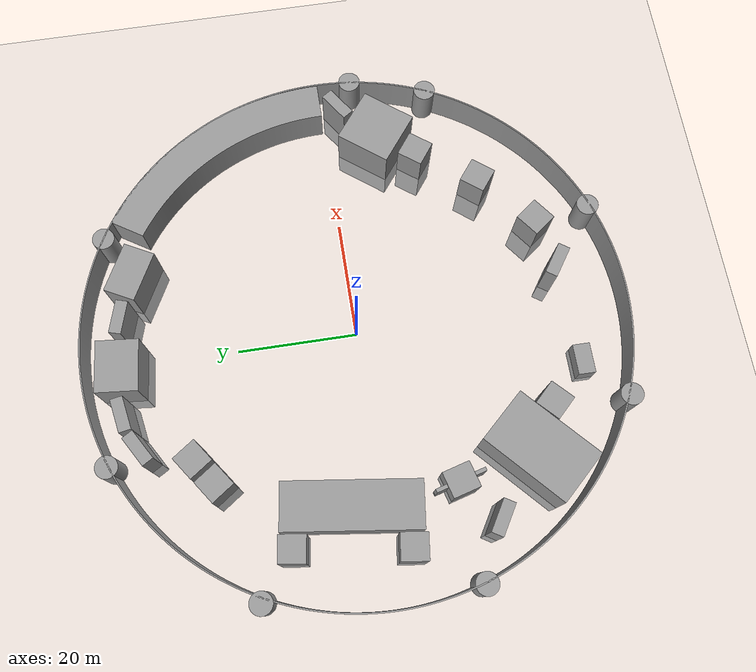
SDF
<sdf version="1.7">
 <world name="default">
  <include><uri>model://ground_plane</uri></include>
  <include><uri>model://sun</uri></include>
  <scene><shadows>false</shadows></scene>
  <physics type="ode">
   <real_time_update_rate>1000</real_time_update_rate>
   <max_step_size>0.001</max_step_size>
   <real_time_factor>1</real_time_factor>
   <ode>
    <solver>
     <type>quick</type>
     <iters>150</iters>
     <precon_iters>0</precon_iters>
     <sor>1.4</sor>
     <use_dynamic_moi_rescaling>1</use_dynamic_moi_rescaling>
    </solver>
    <constraints>
     <cfm>1e-05</cfm>
     <erp>0.2</erp>
     <contact_max_correcting_vel>2000</contact_max_correcting_vel>
     <contact_surface_layer>0.01</contact_surface_layer>
    </constraints>
   </ode>
  </physics>
  <include><pose>-24.247654503 -25.581844504 0 0 -0 0.740794</pose><uri>model://ARMW</uri></include>
  <include><pose>14.167002049 35.705465734 0 0 0 -2.05182</pose><uri>model://CMC</uri></include>
  <include>
   <pose>-10.47295674 -36.379891449 -0.591475 0 -0 1.56691</pose>
   <uri>model://Cabinet</uri>
   <name>Cabinet_1</name>
  </include>
  <include>
   <pose>-10.47295674 -36.379891449 -0.591475 0 -0 1.56691</pose>
   <uri>model://Cabinet</uri>
   <name>Cabinet_2</name>
  </include>
  <include>
   <pose>40.019924308 -2.683707859 0 0 -0 0.595443</pose>
   <uri>model://Display_Board</uri>
   <name>Display_Board_1</name>
  </include>
  <include>
   <pose>6.646768167 38.040504511 0 0 -0 2.85766</pose>
   <uri>model://Display_Board</uri>
   <name>Display_Board_2</name>
  </include>
  <include>
   <pose>5.694397309 -34.553750223 0 0 0 -0.605388</pose>
   <uri>model://Display_Board</uri>
   <name>Display_Board_3</name>
  </include>
  <include>
   <pose>-9.480358985 38.861607981 0 0 0 -2.96148</pose>
   <uri>model://Display_Board</uri>
   <name>Display_Board_4</name>
  </include>
  <include>
   <pose>-15.193619396 36.65344451 0 0 0 -2.60379</pose>
   <uri>model://Display_Board</uri>
   <name>Display_Board_5</name>
  </include>
  <include>
   <pose>-34.041552264 -17.483912255 0 0 0 -0.547968</pose>
   <uri>model://Display_Board</uri>
   <name>Display_Board_6</name>
  </include>
  <include><pose>-1.473479919 38.910733287 0 0 0 -1.66308</pose><uri>model://ERP</uri></include>
  <include>
   <pose>34.640449407 -8.594580209 0.041255102 0 0 -0.661076</pose>
   <uri>model://FlexPicker</uri>
  </include>
  <include><pose>-28.396902261 4.99599286 -0.477378 0 0 -0.131153</pose><uri>model://IMS</uri></include>
  <include><pose>-0.023179 0.019344 0 0 -0 0</pose><uri>model://Lab</uri></include>
  <include>
   <pose>21.089227359 39.723395328 0 0 -0 0</pose>
   <uri>model://Pillar</uri>
   <name>Pillar_1</name>
  </include>
  <include>
   <pose>44.679592882 -5.420977534 0 0 -0 0</pose>
   <uri>model://Pillar</uri>
   <name>Pillar_2</name>
  </include>
  <include>
   <pose>41.065011247 -18.322723684 0 0 -0 0</pose>
   <uri>model://Pillar</uri>
   <name>Pillar_3</name>
  </include>
  <include>
   <pose>-17.271226336 41.867010431 0 0 -0 0</pose>
   <uri>model://Pillar</uri>
   <name>Pillar_4</name>
  </include>
  <include>
   <pose>-40.947275533 20.518066338 0 0 -0 0</pose>
   <uri>model://Pillar</uri>
   <name>Pillar_5</name>
  </include>
  <include>
   <pose>-43.206468391 -13.316067967 0 0 -0 0</pose>
   <uri>model://Pillar</uri>
   <name>Pillar_6</name>
  </include>
  <include>
   <pose>-18.076970214 -41.671334309 0 0 -0 0</pose>
   <uri>model://Pillar</uri>
   <name>Pillar_7</name>
  </include>
  <include>
   <pose>15.142209192 -41.958723697 0 0 -0 0</pose>
   <uri>model://Pillar</uri>
   <name>Pillar_8</name>
  </include>
  <include>
   <pose>-0.138864674 0.342036531 0 0 -0 0</pose>
   <uri>model://Stairs</uri>
   <name>Stairs_2</name>
  </include>
  <include>
   <pose>-22.096676951 25.679904708 -0.491712 0 -0 2.1842</pose>
   <uri>model://Table</uri>
   <name>Table_1</name>
  </include>
  <include>
   <pose>-17.903317969 28.656682465 -0.491403 0 -0 2.18366</pose>
   <uri>model://Table</uri>
   <name>Table_2</name>
  </include>
  <include>
   <pose>30.241513078 -14.902993069 -0.494104 0 -0 2.49855</pose>
   <uri>model://Table</uri>
   <name>Table_3</name>
  </include>
  <include>
   <pose>23.615182054 -24.667377565 -0.494606 0 -0 0.905374</pose>
   <uri>model://Table</uri>
   <name>Table_4</name>
  </include>
  <include>
   <pose>14.425703273 -32.928553079 -0.497075 0 -0 0.640835</pose>
   <uri>model://Table</uri>
   <name>Table_5</name>
  </include>
  <include>
   <pose>-33.762160019 14.994325518 -0.481819 0 -0 1.43389</pose>
   <uri>model://Table</uri>
   <name>Table_6</name>
  </include>
  <include>
   <pose>-36.187515734 -3.517397308 -0.494195 0 -0 1.44259</pose>
   <uri>model://Table</uri>
   <name>Table_7</name>
  </include>
  <include>
   <pose>-17.135338377 -29.484577159 -0.480847 0 -0 0.767527</pose>
   <uri>model://Table</uri>
   <name>Table_8</name>
  </include>
  <include><pose>-27.130624505 -12.59721368 0.5 0 -0 0.2645</pose><uri>model://screen_and_stand</uri></include>
 </world>
</sdf>

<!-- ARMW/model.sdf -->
<sdf version='1.6'>
  <model name='ARMW'>
    <link name='base_station'>
      <pose frame=''>0 0 1 0 -0 0</pose>
      <inertial>
        <mass>1</mass>
        <inertia>
          <ixx>0.166667</ixx>
          <ixy>0</ixy>
          <ixz>0</ixz>
          <iyy>0.166667</iyy>
          <iyz>0</iyz>
          <izz>0.166667</izz>
        </inertia>
        <pose frame=''>0 0 0 0 -0 0</pose>
      </inertial>
      <gravity>1</gravity>
      <self_collide>0</self_collide>
      <kinematic>0</kinematic>
      <visual name='visual'>
        <pose frame=''>0 0 0 0 -0 0</pose>
        <geometry>
          <box>
            <size>15.74 9.84 12.69</size>
          </box>
        </geometry>
        <material>
          <lighting>1</lighting>
          <script>
            <uri>file://media/materials/scripts/gazebo.material</uri>
            <name>Gazebo/Grey</name>
          </script>
          <ambient>0.3 0.3 0.3 1</ambient>
          <diffuse>0.7 0.7 0.7 1</diffuse>
          <specular>0.01 0.01 0.01 1</specular>
          <emissive>0 0 0 1</emissive>
          <shader type='vertex'>
            <normal_map>__default__</normal_map>
          </shader>
        </material>
        <cast_shadows>1</cast_shadows>
        <transparency>0</transparency>
      </visual>
      <collision name='collision'>
        <laser_retro>0</laser_retro>
        <max_contacts>10</max_contacts>
        <pose frame=''>0 0 0 0 -0 0</pose>
        <geometry>
          <box>
            <size>15.74 9.84 12.69</size>
          </box>
        </geometry>
        <surface>
          <friction>
            <ode>
              <mu>1</mu>
              <mu2>1</mu2>
              <fdir1>0 0 0</fdir1>
              <slip1>0</slip1>
              <slip2>0</slip2>
            </ode>
            <torsional>
              <coefficient>1</coefficient>
              <patch_radius>0</patch_radius>
              <surface_radius>0</surface_radius>
              <use_patch_radius>1</use_patch_radius>
              <ode>
                <slip>0</slip>
              </ode>
            </torsional>
          </friction>
          <bounce>
            <restitution_coefficient>0</restitution_coefficient>
            <threshold>1e+06</threshold>
          </bounce>
          <contact>
            <collide_without_contact>0</collide_without_contact>
            <collide_without_contact_bitmask>1</collide_without_contact_bitmask>
            <collide_bitmask>1</collide_bitmask>
            <ode>
              <soft_cfm>0</soft_cfm>
              <soft_erp>0.2</soft_erp>
              <kp>1e+13</kp>
              <kd>1</kd>
              <max_vel>0.01</max_vel>
              <min_depth>0</min_depth>
            </ode>
            <bullet>
              <split_impulse>1</split_impulse>
              <split_impulse_penetration_threshold>-0.01</split_impulse_penetration_threshold>
              <soft_cfm>0</soft_cfm>
              <soft_erp>0.2</soft_erp>
              <kp>1e+13</kp>
              <kd>1</kd>
            </bullet>
          </contact>
        </surface>
      </collision>
    </link>
    <static>1</static>
    <allow_auto_disable>1</allow_auto_disable>
  </model>
</sdf>

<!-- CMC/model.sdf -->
<sdf version='1.6'>
  <model name='CMC'>
    <link name='base_station'>
      <pose frame=''>0 0 1 0 -0 0</pose>
      <inertial>
        <mass>1</mass>
        <inertia>
          <ixx>0.166667</ixx>
          <ixy>0</ixy>
          <ixz>0</ixz>
          <iyy>0.166667</iyy>
          <iyz>0</iyz>
          <izz>0.166667</izz>
        </inertia>
        <pose frame=''>0 0 0 0 -0 0</pose>
      </inertial>
      <gravity>1</gravity>
      <self_collide>0</self_collide>
      <kinematic>0</kinematic>
      <visual name='visual'>
        <pose frame=''>0 0 0 0 -0 0</pose>
        <geometry>
          <box>
            <size>5.39 8.57 12.69</size>
          </box>
        </geometry>
        <material>
          <lighting>1</lighting>
          <script>
            <uri>file://media/materials/scripts/gazebo.material</uri>
            <name>Gazebo/Grey</name>
          </script>
          <ambient>0.3 0.3 0.3 1</ambient>
          <diffuse>0.7 0.7 0.7 1</diffuse>
          <specular>0.01 0.01 0.01 1</specular>
          <emissive>0 0 0 1</emissive>
          <shader type='vertex'>
            <normal_map>__default__</normal_map>
          </shader>
        </material>
        <cast_shadows>1</cast_shadows>
        <transparency>0</transparency>
      </visual>
      <collision name='collision'>
        <laser_retro>0</laser_retro>
        <max_contacts>10</max_contacts>
        <pose frame=''>0 0 0 0 -0 0</pose>
        <geometry>
          <box>
            <size>5.39 8.57 12.69</size>
          </box>
        </geometry>
        <surface>
          <friction>
            <ode>
              <mu>1</mu>
              <mu2>1</mu2>
              <fdir1>0 0 0</fdir1>
              <slip1>0</slip1>
              <slip2>0</slip2>
            </ode>
            <torsional>
              <coefficient>1</coefficient>
              <patch_radius>0</patch_radius>
              <surface_radius>0</surface_radius>
              <use_patch_radius>1</use_patch_radius>
              <ode>
                <slip>0</slip>
              </ode>
            </torsional>
          </friction>
          <bounce>
            <restitution_coefficient>0</restitution_coefficient>
            <threshold>1e+06</threshold>
          </bounce>
          <contact>
            <collide_without_contact>0</collide_without_contact>
            <collide_without_contact_bitmask>1</collide_without_contact_bitmask>
            <collide_bitmask>1</collide_bitmask>
            <ode>
              <soft_cfm>0</soft_cfm>
              <soft_erp>0.2</soft_erp>
              <kp>1e+13</kp>
              <kd>1</kd>
              <max_vel>0.01</max_vel>
              <min_depth>0</min_depth>
            </ode>
            <bullet>
              <split_impulse>1</split_impulse>
              <split_impulse_penetration_threshold>-0.01</split_impulse_penetration_threshold>
              <soft_cfm>0</soft_cfm>
              <soft_erp>0.2</soft_erp>
              <kp>1e+13</kp>
              <kd>1</kd>
            </bullet>
          </contact>
        </surface>
      </collision>
    </link>
    <static>1</static>
    <allow_auto_disable>1</allow_auto_disable>
  </model>
</sdf>

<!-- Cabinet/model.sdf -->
<sdf version='1.6'>
  <model name='Cabinet'>
    <link name='base_station'>
      <pose frame=''>0 0 1 0 -0 0</pose>
      <inertial>
        <mass>1</mass>
        <inertia>
          <ixx>0.166667</ixx>
          <ixy>0</ixy>
          <ixz>0</ixz>
          <iyy>0.166667</iyy>
          <iyz>0</iyz>
          <izz>0.166667</izz>
        </inertia>
        <pose frame=''>0 0 0 0 -0 0</pose>
      </inertial>
      <gravity>1</gravity>
      <self_collide>0</self_collide>
      <kinematic>0</kinematic>
      <visual name='visual'>
        <pose frame=''>0 0 0 0 -0 0</pose>
        <geometry>
          <box>
            <size>2.86 5.08 5.08</size>
          </box>
        </geometry>
        <material>
          <lighting>1</lighting>
          <script>
            <uri>file://media/materials/scripts/gazebo.material</uri>
            <name>Gazebo/Grey</name>
          </script>
          <ambient>0.3 0.3 0.3 1</ambient>
          <diffuse>0.7 0.7 0.7 1</diffuse>
          <specular>0.01 0.01 0.01 1</specular>
          <emissive>0 0 0 1</emissive>
          <shader type='vertex'>
            <normal_map>__default__</normal_map>
          </shader>
        </material>
        <cast_shadows>1</cast_shadows>
        <transparency>0</transparency>
      </visual>
      <collision name='collision'>
        <laser_retro>0</laser_retro>
        <max_contacts>10</max_contacts>
        <pose frame=''>0 0 0 0 -0 0</pose>
        <geometry>
          <box>
            <size>2.86 5.08 5.08</size>
          </box>
        </geometry>
        <surface>
          <friction>
            <ode>
              <mu>1</mu>
              <mu2>1</mu2>
              <fdir1>0 0 0</fdir1>
              <slip1>0</slip1>
              <slip2>0</slip2>
            </ode>
            <torsional>
              <coefficient>1</coefficient>
              <patch_radius>0</patch_radius>
              <surface_radius>0</surface_radius>
              <use_patch_radius>1</use_patch_radius>
              <ode>
                <slip>0</slip>
              </ode>
            </torsional>
          </friction>
          <bounce>
            <restitution_coefficient>0</restitution_coefficient>
            <threshold>1e+06</threshold>
          </bounce>
          <contact>
            <collide_without_contact>0</collide_without_contact>
            <collide_without_contact_bitmask>1</collide_without_contact_bitmask>
            <collide_bitmask>1</collide_bitmask>
            <ode>
              <soft_cfm>0</soft_cfm>
              <soft_erp>0.2</soft_erp>
              <kp>1e+13</kp>
              <kd>1</kd>
              <max_vel>0.01</max_vel>
              <min_depth>0</min_depth>
            </ode>
            <bullet>
              <split_impulse>1</split_impulse>
              <split_impulse_penetration_threshold>-0.01</split_impulse_penetration_threshold>
              <soft_cfm>0</soft_cfm>
              <soft_erp>0.2</soft_erp>
              <kp>1e+13</kp>
              <kd>1</kd>
            </bullet>
          </contact>
        </surface>
      </collision>
    </link>
    <static>1</static>
    <allow_auto_disable>1</allow_auto_disable>
  </model>
</sdf>

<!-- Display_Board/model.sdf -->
<sdf version='1.6'>
  <model name='Display_Board'>
    <link name='base_station'>
      <pose frame=''>0 0 1 0 -0 0</pose>
      <inertial>
        <mass>1</mass>
        <inertia>
          <ixx>0.166667</ixx>
          <ixy>0</ixy>
          <ixz>0</ixz>
          <iyy>0.166667</iyy>
          <iyz>0</iyz>
          <izz>0.166667</izz>
        </inertia>
        <pose frame=''>0 0 0 0 -0 0</pose>
      </inertial>
      <gravity>1</gravity>
      <self_collide>0</self_collide>
      <kinematic>0</kinematic>
      <visual name='visual'>
        <pose frame=''>0 0 0 0 -0 0</pose>
        <geometry>
          <box>
            <size>5.59 2.03 12.69</size>
          </box>
        </geometry>
        <material>
          <lighting>1</lighting>
          <script>
            <uri>file://media/materials/scripts/gazebo.material</uri>
            <name>Gazebo/Grey</name>
          </script>
          <ambient>0.3 0.3 0.3 1</ambient>
          <diffuse>0.7 0.7 0.7 1</diffuse>
          <specular>0.01 0.01 0.01 1</specular>
          <emissive>0 0 0 1</emissive>
          <shader type='vertex'>
            <normal_map>__default__</normal_map>
          </shader>
        </material>
        <cast_shadows>1</cast_shadows>
        <transparency>0</transparency>
      </visual>
      <collision name='collision'>
        <laser_retro>0</laser_retro>
        <max_contacts>10</max_contacts>
        <pose frame=''>0 0 0 0 -0 0</pose>
        <geometry>
          <box>
            <size>5.59 2.03 12.69</size>
          </box>
        </geometry>
        <surface>
          <friction>
            <ode>
              <mu>1</mu>
              <mu2>1</mu2>
              <fdir1>0 0 0</fdir1>
              <slip1>0</slip1>
              <slip2>0</slip2>
            </ode>
            <torsional>
              <coefficient>1</coefficient>
              <patch_radius>0</patch_radius>
              <surface_radius>0</surface_radius>
              <use_patch_radius>1</use_patch_radius>
              <ode>
                <slip>0</slip>
              </ode>
            </torsional>
          </friction>
          <bounce>
            <restitution_coefficient>0</restitution_coefficient>
            <threshold>1e+06</threshold>
          </bounce>
          <contact>
            <collide_without_contact>0</collide_without_contact>
            <collide_without_contact_bitmask>1</collide_without_contact_bitmask>
            <collide_bitmask>1</collide_bitmask>
            <ode>
              <soft_cfm>0</soft_cfm>
              <soft_erp>0.2</soft_erp>
              <kp>1e+13</kp>
              <kd>1</kd>
              <max_vel>0.01</max_vel>
              <min_depth>0</min_depth>
            </ode>
            <bullet>
              <split_impulse>1</split_impulse>
              <split_impulse_penetration_threshold>-0.01</split_impulse_penetration_threshold>
              <soft_cfm>0</soft_cfm>
              <soft_erp>0.2</soft_erp>
              <kp>1e+13</kp>
              <kd>1</kd>
            </bullet>
          </contact>
        </surface>
      </collision>
    </link>
    <static>1</static>
    <allow_auto_disable>1</allow_auto_disable>
  </model>
</sdf>

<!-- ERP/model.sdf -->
<sdf version='1.6'>
  <model name='ERP'>
    <link name='base_station'>
      <pose frame=''>0 0 1 0 -0 0</pose>
      <inertial>
        <mass>1</mass>
        <inertia>
          <ixx>0.166667</ixx>
          <ixy>0</ixy>
          <ixz>0</ixz>
          <iyy>0.166667</iyy>
          <iyz>0</iyz>
          <izz>0.166667</izz>
        </inertia>
        <pose frame=''>0 0 0 0 -0 0</pose>
      </inertial>
      <gravity>1</gravity>
      <self_collide>0</self_collide>
      <kinematic>0</kinematic>
      <visual name='visual'>
        <pose frame=''>0 0 0 0 -0 0</pose>
        <geometry>
          <box>
            <size>6.98 8.57 12.69</size>
          </box>
        </geometry>
        <material>
          <lighting>1</lighting>
          <script>
            <uri>file://media/materials/scripts/gazebo.material</uri>
            <name>Gazebo/Grey</name>
          </script>
          <ambient>0.3 0.3 0.3 1</ambient>
          <diffuse>0.7 0.7 0.7 1</diffuse>
          <specular>0.01 0.01 0.01 1</specular>
          <emissive>0 0 0 1</emissive>
          <shader type='vertex'>
            <normal_map>__default__</normal_map>
          </shader>
        </material>
        <cast_shadows>1</cast_shadows>
        <transparency>0</transparency>
      </visual>
      <collision name='collision'>
        <laser_retro>0</laser_retro>
        <max_contacts>10</max_contacts>
        <pose frame=''>0 0 0 0 -0 0</pose>
        <geometry>
          <box>
            <size>6.98 8.57 12.69</size>
          </box>
        </geometry>
        <surface>
          <friction>
            <ode>
              <mu>1</mu>
              <mu2>1</mu2>
              <fdir1>0 0 0</fdir1>
              <slip1>0</slip1>
              <slip2>0</slip2>
            </ode>
            <torsional>
              <coefficient>1</coefficient>
              <patch_radius>0</patch_radius>
              <surface_radius>0</surface_radius>
              <use_patch_radius>1</use_patch_radius>
              <ode>
                <slip>0</slip>
              </ode>
            </torsional>
          </friction>
          <bounce>
            <restitution_coefficient>0</restitution_coefficient>
            <threshold>1e+06</threshold>
          </bounce>
          <contact>
            <collide_without_contact>0</collide_without_contact>
            <collide_without_contact_bitmask>1</collide_without_contact_bitmask>
            <collide_bitmask>1</collide_bitmask>
            <ode>
              <soft_cfm>0</soft_cfm>
              <soft_erp>0.2</soft_erp>
              <kp>1e+13</kp>
              <kd>1</kd>
              <max_vel>0.01</max_vel>
              <min_depth>0</min_depth>
            </ode>
            <bullet>
              <split_impulse>1</split_impulse>
              <split_impulse_penetration_threshold>-0.01</split_impulse_penetration_threshold>
              <soft_cfm>0</soft_cfm>
              <soft_erp>0.2</soft_erp>
              <kp>1e+13</kp>
              <kd>1</kd>
            </bullet>
          </contact>
        </surface>
      </collision>
    </link>
    <static>1</static>
    <allow_auto_disable>1</allow_auto_disable>
  </model>
</sdf>

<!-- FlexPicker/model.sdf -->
<sdf version='1.6'>
  <model name='FlexPicker'>
    <link name='base_station'>
      <pose frame=''>0 0 1 0 -0 0</pose>
      <inertial>
        <mass>1</mass>
        <inertia>
          <ixx>0.166667</ixx>
          <ixy>0</ixy>
          <ixz>0</ixz>
          <iyy>0.166667</iyy>
          <iyz>0</iyz>
          <izz>0.166667</izz>
        </inertia>
        <pose frame=''>0 0 0 0 -0 0</pose>
      </inertial>
      <gravity>1</gravity>
      <self_collide>0</self_collide>
      <kinematic>0</kinematic>
      <visual name='visual'>
        <pose frame=''>0 0 0 0 -0 0</pose>
        <geometry>
          <box>
            <size>9.52 9.52 12.69</size>
          </box>
        </geometry>
        <material>
          <lighting>1</lighting>
          <script>
            <uri>file://media/materials/scripts/gazebo.material</uri>
            <name>Gazebo/Grey</name>
          </script>
          <ambient>0.3 0.3 0.3 1</ambient>
          <diffuse>0.7 0.7 0.7 1</diffuse>
          <specular>0.01 0.01 0.01 1</specular>
          <emissive>0 0 0 1</emissive>
          <shader type='vertex'>
            <normal_map>__default__</normal_map>
          </shader>
        </material>
        <cast_shadows>1</cast_shadows>
        <transparency>0</transparency>
      </visual>
      <collision name='collision'>
        <laser_retro>0</laser_retro>
        <max_contacts>10</max_contacts>
        <pose frame=''>0 0 0 0 -0 0</pose>
        <geometry>
          <box>
            <size>9.52 9.52 12.69</size>
          </box>
        </geometry>
        <surface>
          <friction>
            <ode>
              <mu>1</mu>
              <mu2>1</mu2>
              <fdir1>0 0 0</fdir1>
              <slip1>0</slip1>
              <slip2>0</slip2>
            </ode>
            <torsional>
              <coefficient>1</coefficient>
              <patch_radius>0</patch_radius>
              <surface_radius>0</surface_radius>
              <use_patch_radius>1</use_patch_radius>
              <ode>
                <slip>0</slip>
              </ode>
            </torsional>
          </friction>
          <bounce>
            <restitution_coefficient>0</restitution_coefficient>
            <threshold>1e+06</threshold>
          </bounce>
          <contact>
            <collide_without_contact>0</collide_without_contact>
            <collide_without_contact_bitmask>1</collide_without_contact_bitmask>
            <collide_bitmask>1</collide_bitmask>
            <ode>
              <soft_cfm>0</soft_cfm>
              <soft_erp>0.2</soft_erp>
              <kp>1e+13</kp>
              <kd>1</kd>
              <max_vel>0.01</max_vel>
              <min_depth>0</min_depth>
            </ode>
            <bullet>
              <split_impulse>1</split_impulse>
              <split_impulse_penetration_threshold>-0.01</split_impulse_penetration_threshold>
              <soft_cfm>0</soft_cfm>
              <soft_erp>0.2</soft_erp>
              <kp>1e+13</kp>
              <kd>1</kd>
            </bullet>
          </contact>
        </surface>
      </collision>
    </link>
    <static>1</static>
    <allow_auto_disable>1</allow_auto_disable>
  </model>
</sdf>

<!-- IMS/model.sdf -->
<sdf version='1.6'>
  <model name='IMS'>
    <link name='base_station'>
      <pose frame=''>0 0 1 0 -0 0</pose>
      <inertial>
        <mass>1</mass>
        <inertia>
          <ixx>0.166667</ixx>
          <ixy>0</ixy>
          <ixz>0</ixz>
          <iyy>0.166667</iyy>
          <iyz>0</iyz>
          <izz>0.166667</izz>
        </inertia>
        <pose frame=''>0 0 0 0 -0 0</pose>
      </inertial>
      <gravity>1</gravity>
      <self_collide>0</self_collide>
      <kinematic>0</kinematic>
      <visual name='visual'>
        <pose frame=''>0 0 0 0 -0 0</pose>
        <geometry>
          <box>
            <size>7.93 22.85 6.35</size>
          </box>
        </geometry>
        <material>
          <lighting>1</lighting>
          <script>
            <uri>file://media/materials/scripts/gazebo.material</uri>
            <name>Gazebo/Grey</name>
          </script>
          <ambient>0.3 0.3 0.3 1</ambient>
          <diffuse>0.7 0.7 0.7 1</diffuse>
          <specular>0.01 0.01 0.01 1</specular>
          <emissive>0 0 0 1</emissive>
          <shader type='vertex'>
            <normal_map>__default__</normal_map>
          </shader>
        </material>
        <cast_shadows>1</cast_shadows>
        <transparency>0</transparency>
      </visual>
      <collision name='collision'>
        <laser_retro>0</laser_retro>
        <max_contacts>10</max_contacts>
        <pose frame=''>0 0 0 0 -0 0</pose>
        <geometry>
          <box>
            <size>7.93 22.85 6.35</size>
          </box>
        </geometry>
        <surface>
          <friction>
            <ode>
              <mu>1</mu>
              <mu2>1</mu2>
              <fdir1>0 0 0</fdir1>
              <slip1>0</slip1>
              <slip2>0</slip2>
            </ode>
            <torsional>
              <coefficient>1</coefficient>
              <patch_radius>0</patch_radius>
              <surface_radius>0</surface_radius>
              <use_patch_radius>1</use_patch_radius>
              <ode>
                <slip>0</slip>
              </ode>
            </torsional>
          </friction>
          <bounce>
            <restitution_coefficient>0</restitution_coefficient>
            <threshold>1e+06</threshold>
          </bounce>
          <contact>
            <collide_without_contact>0</collide_without_contact>
            <collide_without_contact_bitmask>1</collide_without_contact_bitmask>
            <collide_bitmask>1</collide_bitmask>
            <ode>
              <soft_cfm>0</soft_cfm>
              <soft_erp>0.2</soft_erp>
              <kp>1e+13</kp>
              <kd>1</kd>
              <max_vel>0.01</max_vel>
              <min_depth>0</min_depth>
            </ode>
            <bullet>
              <split_impulse>1</split_impulse>
              <split_impulse_penetration_threshold>-0.01</split_impulse_penetration_threshold>
              <soft_cfm>0</soft_cfm>
              <soft_erp>0.2</soft_erp>
              <kp>1e+13</kp>
              <kd>1</kd>
            </bullet>
          </contact>
        </surface>
      </collision>
    </link>
    <static>1</static>
    <allow_auto_disable>1</allow_auto_disable>
  </model>
</sdf>

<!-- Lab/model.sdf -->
<sdf version='1.6'>
  <model name='Lab'>
    <link name='link'>
      <pose frame=''>0 0 0 0 -0 0</pose>
      <inertial>
        <mass>1</mass>
        <inertia>
          <ixx>0.166667</ixx>
          <ixy>0</ixy>
          <ixz>0</ixz>
          <iyy>0.166667</iyy>
          <iyz>0</iyz>
          <izz>0.166667</izz>
        </inertia>
        <pose frame=''>0 0 0 0 -0 0</pose>
      </inertial>
      <gravity>1</gravity>
      <self_collide>0</self_collide>
      <kinematic>0</kinematic>
      <visual name='visual'>
        <pose frame=''>0 0 0 0 -0 0</pose>
        <geometry>
          <mesh>
            <uri>model://Lab/lab.dae</uri>
            <scale>0.006346939 0.006346939 0.006346939</scale>
          </mesh>
        </geometry>
        <material>
          <lighting>1</lighting>
          <script>
            <uri>file://media/materials/scripts/gazebo.material</uri>
            <name>Gazebo/Grey</name>
          </script>
          <ambient>0.3 0.3 0.3 1</ambient>
          <diffuse>0.7 0.7 0.7 1</diffuse>
          <specular>0.01 0.01 0.01 1</specular>
          <emissive>0 0 0 1</emissive>
          <shader type='vertex'>
            <normal_map>__default__</normal_map>
          </shader>
        </material>
        <cast_shadows>1</cast_shadows>
        <transparency>0</transparency>
      </visual>
      <collision name='collision'>
        <laser_retro>0</laser_retro>
        <max_contacts>10</max_contacts>
        <pose frame=''>0 0 0 0 -0 0</pose>
        <geometry>
          <mesh>
            <uri>model://Lab/lab.dae</uri>
            <scale>0.006346939 0.006346939 0.006346939</scale>
          </mesh>
        </geometry>
      </collision>
    </link>
    <static>1</static>
    <allow_auto_disable>1</allow_auto_disable>
  </model>
</sdf>

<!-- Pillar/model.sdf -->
<sdf version='1.6'>
  <model name='Pillar'>
    <link name='link'>
      <pose frame=''>0 0 0 0 -0 0</pose>
      <inertial>
        <mass>1</mass>
        <inertia>
          <ixx>0.166667</ixx>
          <ixy>0</ixy>
          <ixz>0</ixz>
          <iyy>0.166667</iyy>
          <iyz>0</iyz>
          <izz>0.166667</izz>
        </inertia>
        <pose frame=''>0 0 0 0 -0 0</pose>
      </inertial>
      <gravity>1</gravity>
      <self_collide>0</self_collide>
      <kinematic>0</kinematic>
      <visual name='visual'>
        <pose frame=''>0 0 0 0 -0 0</pose>
        <geometry>
          <mesh>
            <uri>model://Pillar/pillar.dae</uri>
            <scale>0.006346939 0.006346939 0.006346939</scale>
          </mesh>
        </geometry>
        <material>
          <lighting>1</lighting>
          <script>
            <uri>file://media/materials/scripts/gazebo.material</uri>
            <name>Gazebo/Grey</name>
          </script>
          <ambient>0.3 0.3 0.3 1</ambient>
          <diffuse>0.7 0.7 0.7 1</diffuse>
          <specular>0.01 0.01 0.01 1</specular>
          <emissive>0 0 0 1</emissive>
          <shader type='vertex'>
            <normal_map>__default__</normal_map>
          </shader>
        </material>
        <cast_shadows>1</cast_shadows>
        <transparency>0</transparency>
      </visual>
      <collision name='collision'>
        <laser_retro>0</laser_retro>
        <max_contacts>10</max_contacts>
        <pose frame=''>0 0 0 0 -0 0</pose>
        <geometry>
          <mesh>
            <uri>model://Pillar/pillar.dae</uri>
            <scale>0.006346939 0.006346939 0.006346939</scale>
          </mesh>
        </geometry>
      </collision>
    </link>
    <static>1</static>
    <allow_auto_disable>1</allow_auto_disable>
  </model>
</sdf>

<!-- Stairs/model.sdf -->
<sdf version='1.6'>
  <model name='Stairs'>
    <link name='link'>
      <pose frame=''>0 0 0 0 -0 0</pose>
      <inertial>
        <mass>1</mass>
        <inertia>
          <ixx>0.166667</ixx>
          <ixy>0</ixy>
          <ixz>0</ixz>
          <iyy>0.166667</iyy>
          <iyz>0</iyz>
          <izz>0.166667</izz>
        </inertia>
        <pose frame=''>0 0 0 0 -0 0</pose>
      </inertial>
      <gravity>1</gravity>
      <self_collide>0</self_collide>
      <kinematic>0</kinematic>
      <visual name='visual'>
        <pose frame=''>0 0 0 0 -0 0</pose>
        <geometry>
          <mesh>
            <uri>model://Stairs/stairs.dae</uri>
            <scale>0.006346939 0.006346939 0.006346939</scale>
          </mesh>
        </geometry>
        <material>
          <lighting>1</lighting>
          <script>
            <uri>file://media/materials/scripts/gazebo.material</uri>
            <name>Gazebo/Grey</name>
          </script>
          <ambient>0.3 0.3 0.3 1</ambient>
          <diffuse>0.7 0.7 0.7 1</diffuse>
          <specular>0.01 0.01 0.01 1</specular>
          <emissive>0 0 0 1</emissive>
          <shader type='vertex'>
            <normal_map>__default__</normal_map>
          </shader>
        </material>
        <cast_shadows>1</cast_shadows>
        <transparency>0</transparency>
      </visual>
      <collision name='collision'>
        <laser_retro>0</laser_retro>
        <max_contacts>10</max_contacts>
        <pose frame=''>0 0 0 0 -0 0</pose>
        <geometry>
          <mesh>
            <uri>model://Stairs/stairs.dae</uri>
            <scale>0.006346939 0.006346939 0.006346939</scale>
          </mesh>
        </geometry>
      </collision>
    </link>
    <static>1</static>
    <allow_auto_disable>1</allow_auto_disable>
  </model>
</sdf>

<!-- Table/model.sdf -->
<sdf version='1.6'>
  <model name='Shelf'>
    <link name='link'>
      <pose frame=''>0 0 0 0 -0 0</pose>
      <inertial>
        <mass>1</mass>
        <inertia>
          <ixx>0.166667</ixx>
          <ixy>0</ixy>
          <ixz>0</ixz>
          <iyy>0.166667</iyy>
          <iyz>0</iyz>
          <izz>0.166667</izz>
        </inertia>
        <pose frame=''>0 0 0 0 -0 0</pose>
      </inertial>
      <self_collide>0</self_collide>
      <kinematic>0</kinematic>
      <visual name='visual'>
        <geometry>
          <box>
            <size>4.44 4.44 12.69</size>
          </box>
        </geometry>
        <material>
          <script>
            <name>Gazebo/Grey</name>
            <uri>file://media/materials/scripts/gazebo.material</uri>
          </script>
          <ambient>0.3 0.3 0.3 1</ambient>
          <diffuse>0.7 0.7 0.7 1</diffuse>
          <specular>0.01 0.01 0.01 1</specular>
          <emissive>0 0 0 1</emissive>
          <shader type='vertex'>
            <normal_map>__default__</normal_map>
          </shader>
        </material>
        <pose frame=''>0 0 0 0 -0 0</pose>
        <cast_shadows>1</cast_shadows>
        <transparency>0</transparency>
      </visual>
      <collision name='collision'>
        <laser_retro>0</laser_retro>
        <max_contacts>10</max_contacts>
        <pose frame=''>0 0 0 0 -0 0</pose>
        <geometry>
          <box>
            <size>4.44 4.44 12.69</size>
          </box>
        </geometry>
        <surface>
          <friction>
            <ode>
              <mu>1</mu>
              <mu2>1</mu2>
              <fdir1>0 0 0</fdir1>
              <slip1>0</slip1>
              <slip2>0</slip2>
            </ode>
            <torsional>
              <coefficient>1</coefficient>
              <patch_radius>0</patch_radius>
              <surface_radius>0</surface_radius>
              <use_patch_radius>1</use_patch_radius>
              <ode>
                <slip>0</slip>
              </ode>
            </torsional>
          </friction>
          <bounce>
            <restitution_coefficient>0</restitution_coefficient>
            <threshold>1e+06</threshold>
          </bounce>
          <contact>
            <collide_without_contact>0</collide_without_contact>
            <collide_without_contact_bitmask>1</collide_without_contact_bitmask>
            <collide_bitmask>1</collide_bitmask>
            <ode>
              <soft_cfm>0</soft_cfm>
              <soft_erp>0.2</soft_erp>
              <kp>1e+13</kp>
              <kd>1</kd>
              <max_vel>0.01</max_vel>
              <min_depth>0</min_depth>
            </ode>
            <bullet>
              <split_impulse>1</split_impulse>
              <split_impulse_penetration_threshold>-0.01</split_impulse_penetration_threshold>
              <soft_cfm>0</soft_cfm>
              <soft_erp>0.2</soft_erp>
              <kp>1e+13</kp>
              <kd>1</kd>
            </bullet>
          </contact>
        </surface>
      </collision>
    </link>
    <static>1</static>
    <allow_auto_disable>1</allow_auto_disable>
  </model>
</sdf>

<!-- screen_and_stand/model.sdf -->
<sdf version='1.6'>
  <model name='screen_and_stand'>
    <link name='link'>
      <pose frame=''>0 0 0 0 -0 0</pose>
      <inertial>
        <mass>1</mass>
        <inertia>
          <ixx>0.166667</ixx>
          <ixy>0</ixy>
          <ixz>0</ixz>
          <iyy>0.166667</iyy>
          <iyz>0</iyz>
          <izz>0.166667</izz>
        </inertia>
        <pose frame=''>0 0 0 0 -0 0</pose>
      </inertial>
      <self_collide>0</self_collide>
      <kinematic>0</kinematic>
      <gravity>1</gravity>
      <visual name='ModelPreview_4::link::visual_1'>
        <geometry>
          <box>
            <size>0.6346939 8.695306127 4.88714286</size>
          </box>
        </geometry>
        <material>
          <script>
            <name>Gazebo/Grey</name>
            <uri>file://media/materials/scripts/gazebo.material</uri>
          </script>
          <ambient>0.3 0.3 0.3 1</ambient>
          <diffuse>0.7 0.7 0.7 1</diffuse>
          <specular>0.01 0.01 0.01 1</specular>
          <emissive>0 0 0 1</emissive>
          <shader type='vertex'>
            <normal_map>__default__</normal_map>
          </shader>
        </material>
        <pose frame=''>0 0 1 0 -0 0</pose>
        <cast_shadows>1</cast_shadows>
        <transparency>0</transparency>
      </visual>
      <visual name='visual'>
        <geometry>
          <box>
            <size>4.442857145 4.760204084 7.74326531</size>
          </box>
        </geometry>
        <material>
          <script>
            <name>Gazebo/Grey</name>
            <uri>file://media/materials/scripts/gazebo.material</uri>
          </script>
          <ambient>0.3 0.3 0.3 1</ambient>
          <diffuse>0.7 0.7 0.7 1</diffuse>
          <specular>0.01 0.01 0.01 1</specular>
          <emissive>0 0 0 1</emissive>
          <shader type='vertex'>
            <normal_map>__default__</normal_map>
          </shader>
        </material>
        <pose frame=''>0 0 0 0 -0 0</pose>
        <cast_shadows>1</cast_shadows>
        <transparency>0</transparency>
      </visual>
      <collision name='collision_1'>
        <laser_retro>0</laser_retro>
        <max_contacts>10</max_contacts>
        <pose frame=''>0 0 1 0 -0 0</pose>
        <geometry>
          <box>
            <size>0.6346939 8.695306127 4.88714286</size>
          </box>
        </geometry>
        <surface>
          <friction>
            <ode>
              <mu>1</mu>
              <mu2>1</mu2>
              <fdir1>0 0 0</fdir1>
              <slip1>0</slip1>
              <slip2>0</slip2>
            </ode>
            <torsional>
              <coefficient>1</coefficient>
              <patch_radius>0</patch_radius>
              <surface_radius>0</surface_radius>
              <use_patch_radius>1</use_patch_radius>
              <ode>
                <slip>0</slip>
              </ode>
            </torsional>
          </friction>
          <bounce>
            <restitution_coefficient>0</restitution_coefficient>
            <threshold>1e+06</threshold>
          </bounce>
          <contact>
            <collide_without_contact>0</collide_without_contact>
            <collide_without_contact_bitmask>1</collide_without_contact_bitmask>
            <collide_bitmask>1</collide_bitmask>
            <ode>
              <soft_cfm>0</soft_cfm>
              <soft_erp>0.2</soft_erp>
              <kp>1e+13</kp>
              <kd>1</kd>
              <max_vel>0.01</max_vel>
              <min_depth>0</min_depth>
            </ode>
            <bullet>
              <split_impulse>1</split_impulse>
              <split_impulse_penetration_threshold>-0.01</split_impulse_penetration_threshold>
              <soft_cfm>0</soft_cfm>
              <soft_erp>0.2</soft_erp>
              <kp>1e+13</kp>
              <kd>1</kd>
            </bullet>
          </contact>
        </surface>
      </collision>
      <collision name='collision'>
        <laser_retro>0</laser_retro>
        <max_contacts>10</max_contacts>
        <pose frame=''>0 0 0 0 -0 0</pose>
        <geometry>
          <box>
            <size>4.442857145 4.760204084 7.74326531</size>
          </box>
        </geometry>
        <surface>
          <friction>
            <ode>
              <mu>1</mu>
              <mu2>1</mu2>
              <fdir1>0 0 0</fdir1>
              <slip1>0</slip1>
              <slip2>0</slip2>
            </ode>
            <torsional>
              <coefficient>1</coefficient>
              <patch_radius>0</patch_radius>
              <surface_radius>0</surface_radius>
              <use_patch_radius>1</use_patch_radius>
              <ode>
                <slip>0</slip>
              </ode>
            </torsional>
          </friction>
          <bounce>
            <restitution_coefficient>0</restitution_coefficient>
            <threshold>1e+06</threshold>
          </bounce>
          <contact>
            <collide_without_contact>0</collide_without_contact>
            <collide_without_contact_bitmask>1</collide_without_contact_bitmask>
            <collide_bitmask>1</collide_bitmask>
            <ode>
              <soft_cfm>0</soft_cfm>
              <soft_erp>0.2</soft_erp>
              <kp>1e+13</kp>
              <kd>1</kd>
              <max_vel>0.01</max_vel>
              <min_depth>0</min_depth>
            </ode>
            <bullet>
              <split_impulse>1</split_impulse>
              <split_impulse_penetration_threshold>-0.01</split_impulse_penetration_threshold>
              <soft_cfm>0</soft_cfm>
              <soft_erp>0.2</soft_erp>
              <kp>1e+13</kp>
              <kd>1</kd>
            </bullet>
          </contact>
        </surface>
      </collision>
    </link>
    <static>1</static>
    <allow_auto_disable>1</allow_auto_disable>
  </model>
</sdf>
